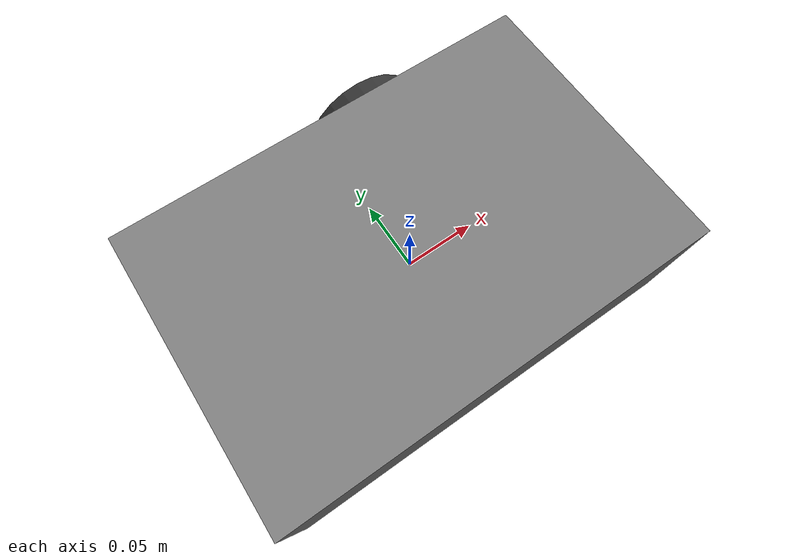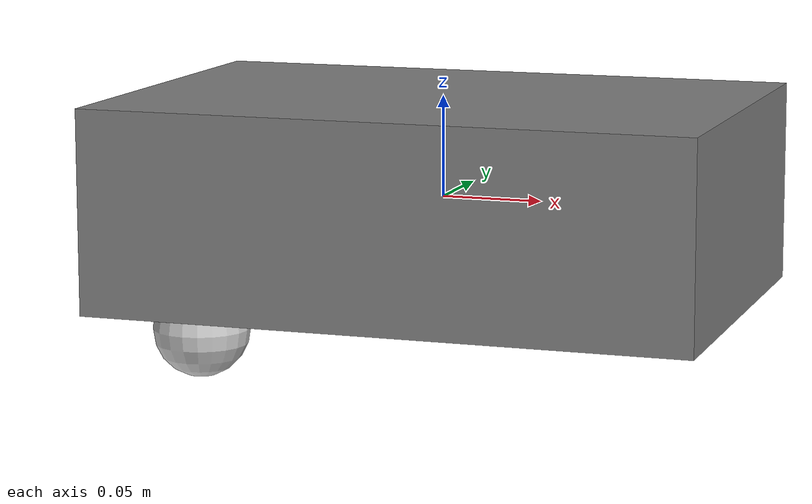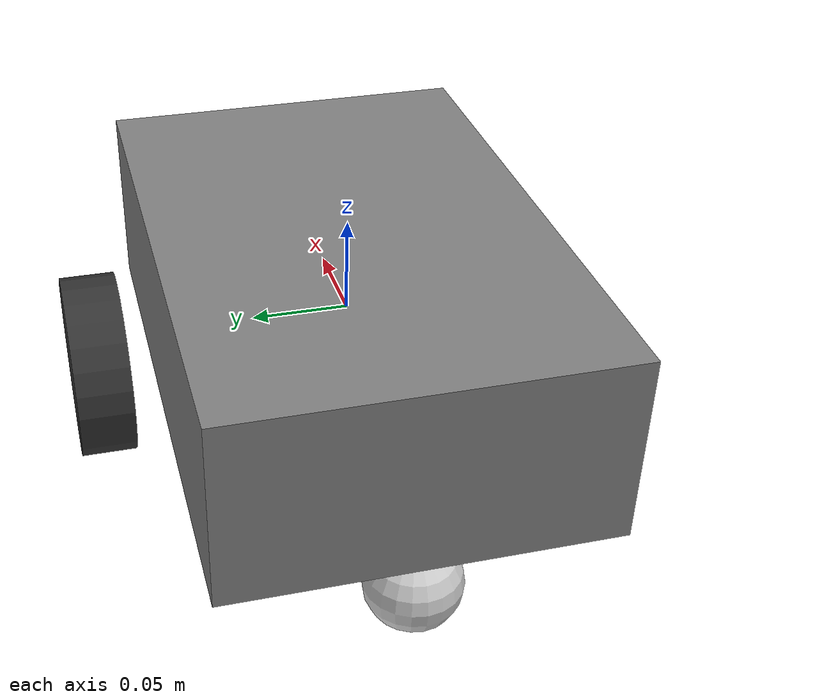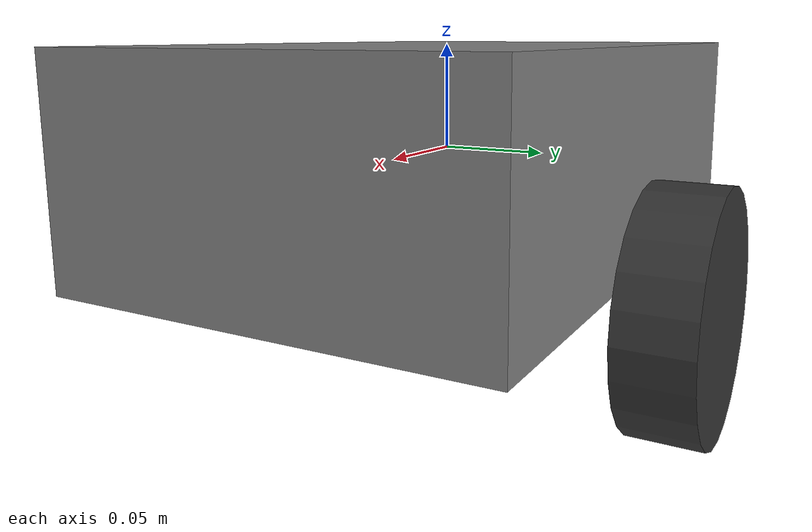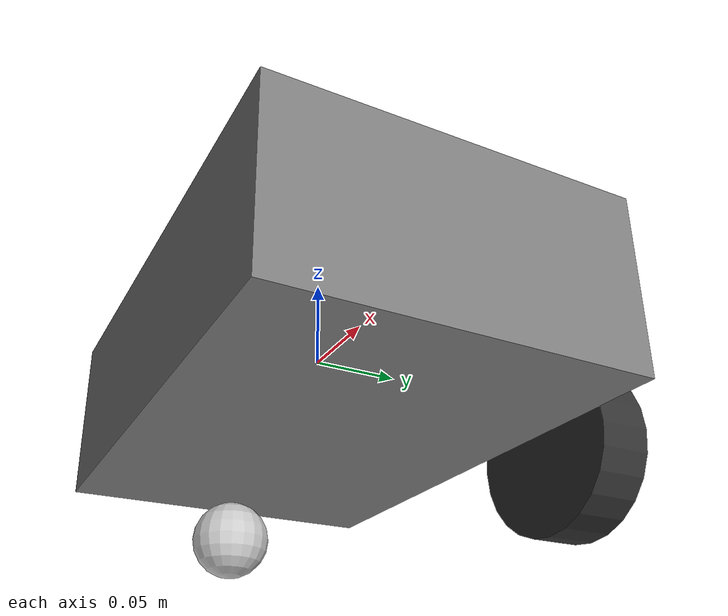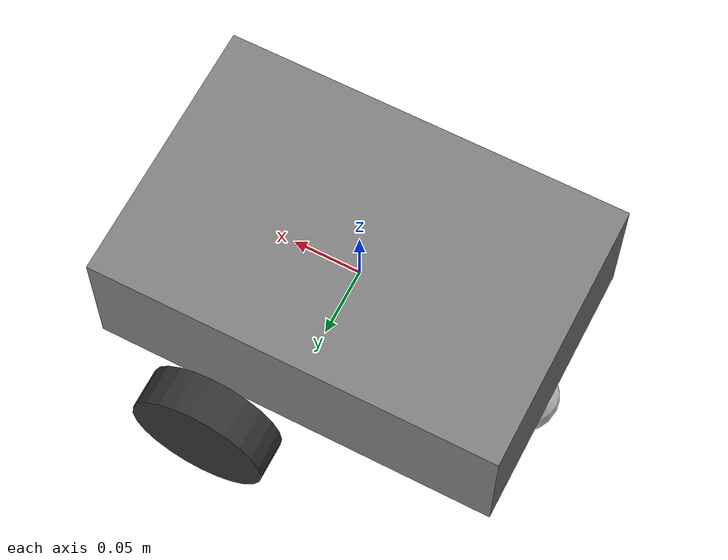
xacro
<?xml version="1.0"?>
<robot name="reference" xmlns:xacro="http://ros.org/wiki/xacro">

  <!-- ============================================================
       PROPERTIES — define once, use everywhere
       ============================================================ -->

  <!-- Box (chassis) -->
  <xacro:property name="box_l"    value="0.30"/>  <!-- length along x [m] -->
  <xacro:property name="box_w"    value="0.20"/>  <!-- width  along y [m] -->
  <xacro:property name="box_h"    value="0.10"/>  <!-- height along z [m] -->
  <xacro:property name="box_m"    value="5.0"/>   <!-- mass [kg]          -->

  <!-- Cylinder (drive wheel) -->
  <xacro:property name="cyl_r"    value="0.05"/>  <!-- radius [m]  -->
  <xacro:property name="cyl_l"    value="0.03"/>  <!-- length [m]  -->
  <xacro:property name="cyl_m"    value="0.5"/>   <!-- mass   [kg] -->

  <!-- Sphere (caster) -->
  <xacro:property name="sph_r"    value="0.025"/> <!-- radius [m]  -->
  <xacro:property name="sph_m"    value="0.1"/>   <!-- mass   [kg] -->

  <!-- ============================================================
       BOX LINK  (e.g. chassis)
       ============================================================ -->
  <link name="box_link">

    <visual>
      <geometry>
        <box size="${box_l} ${box_w} ${box_h}"/>
      </geometry>
      <material name="grey">
        <color rgba="0.5 0.5 0.5 1.0"/>
      </material>
    </visual>

    <collision>
      <geometry>
        <box size="${box_l} ${box_w} ${box_h}"/>
      </geometry>
    </collision>

    <inertial>
      <mass value="${box_m}"/>
      <inertia
        ixx="${box_m / 12 * (box_w**2 + box_h**2)}" ixy="0" ixz="0"
        iyy="${box_m / 12 * (box_l**2 + box_h**2)}" iyz="0"
        izz="${box_m / 12 * (box_l**2 + box_w**2)}"/>
    </inertial>

  </link>

  <link name="cylinder_link">

    <visual>
      <geometry>
        <cylinder radius="${cyl_r}" length="${cyl_l}"/>
      </geometry>
      <material name="dark">
        <color rgba="0.2 0.2 0.2 1.0"/>
      </material>
    </visual>

    <collision>
      <geometry>
        <cylinder radius="${cyl_r}" length="${cyl_l}"/>
      </geometry>
    </collision>

    <inertial>
      <mass value="${cyl_m}"/>
      <inertia
        ixx="${cyl_m / 12 * (3 * cyl_r**2 + cyl_l**2)}" ixy="0" ixz="0"
        iyy="${cyl_m / 12 * (3 * cyl_r**2 + cyl_l**2)}" iyz="0"
        izz="${cyl_m / 2  *  cyl_r**2}"/>
    </inertial>

  </link>

  <!-- ============================================================
       SPHERE LINK  (e.g. caster)
       ============================================================ -->
  <link name="sphere_link">

    <visual>
      <geometry>
        <sphere radius="${sph_r}"/>
      </geometry>
      <material name="light">
        <color rgba="0.8 0.8 0.8 1.0"/>
      </material>
    </visual>

    <collision>
      <geometry>
        <sphere radius="${sph_r}"/>
      </geometry>
    </collision>

    <inertial>
      <mass value="${sph_m}"/>
      <inertia
        ixx="${2/5 * sph_m * sph_r**2}" ixy="0" ixz="0"
        iyy="${2/5 * sph_m * sph_r**2}" iyz="0"
        izz="${2/5 * sph_m * sph_r**2}"/>
    </inertial>

  </link>

  <!-- ============================================================
       CONTINUOUS JOINT  (unlimited rotation — use for drive wheels)
       ============================================================ -->
  <joint name="example_continuous_joint" type="continuous">
    <parent link="box_link"/>
    <child  link="cylinder_link"/>
    <!-- origin: position of child frame relative to parent frame -->
    <origin xyz="0.05 0.13 ${-box_h / 2}" rpy="-1.5708 0 0"/>
    <!-- axis: rotation axis in the child frame after rpy is applied -->
    <axis xyz="0 0 1"/>
    <dynamics damping="0.1" friction="0.1"/>
  </joint>

  <!-- ============================================================
       FIXED JOINT  (no motion — use for caster, sensors, …)
       ============================================================ -->
  <joint name="example_fixed_joint" type="fixed">
    <parent link="box_link"/>
    <child  link="sphere_link"/>
    <!-- z: sphere must touch the ground → sph_r above ground,
         box_h/2 below base_link → offset = sph_r - box_h/2 -->
    <origin xyz="-0.13 0 ${-sph_r - box_h / 2}" rpy="0 0 0"/>
  </joint>

</robot>
